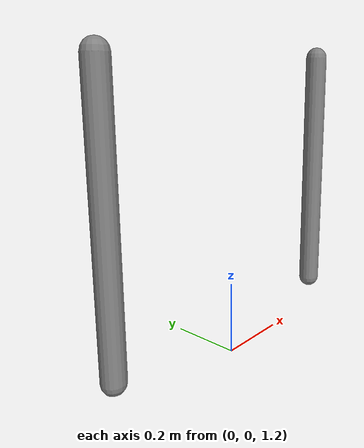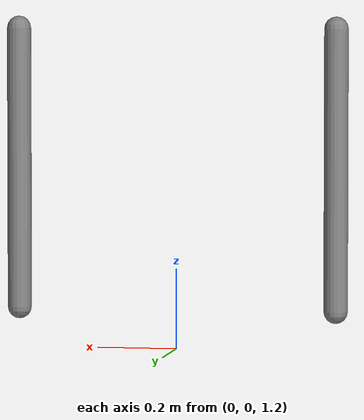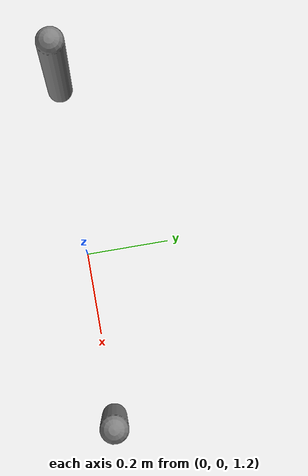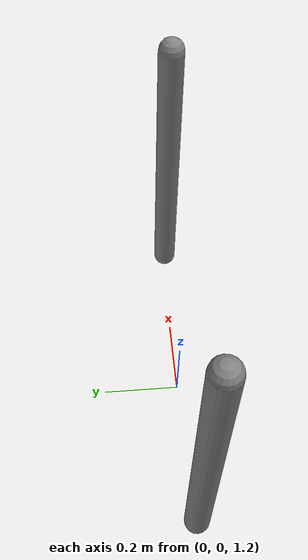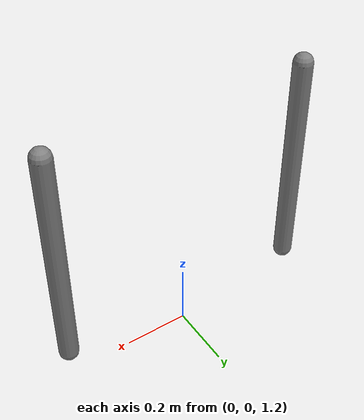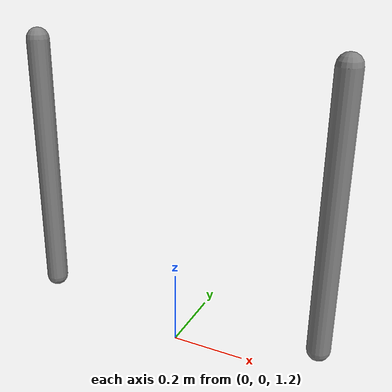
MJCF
<mujoco model="joint-mimic">
  <compiler angle="radian"/>
  <option gravity="0 0 -9.81" timestep="0.001">
    <flag energy="enable"/>
  </option>

  <default>
    <geom contype="0" conaffinity="0"/>
  </default>

  <worldbody>
    <body name="arm1" pos="-0.4 0 2.0">
      <joint name="j1" type="hinge" axis="0 1 0" damping="0"/>
      <geom name="arm1" type="capsule" fromto="0 0 0 0 0 -0.7" size="0.03" mass="1.0"/>
    </body>
    <body name="arm2" pos="0.4 0 2.0">
      <joint name="j2" type="hinge" axis="0 1 0" damping="0"/>
      <geom name="arm2" type="capsule" fromto="0 0 0 0 0 -0.7" size="0.03" mass="1.0"/>
    </body>
  </worldbody>

  <equality>
    <joint joint1="j1" joint2="j2" polycoef="0 1" solref="0.8 0.5"/>
  </equality>
</mujoco>
